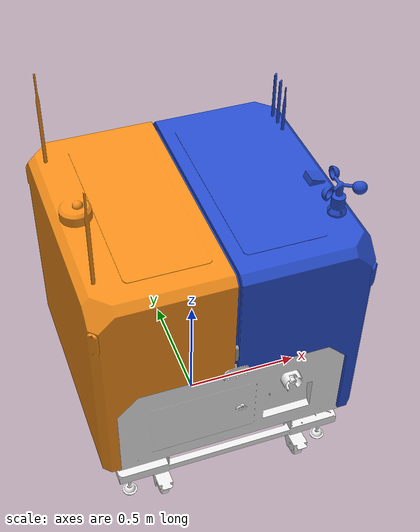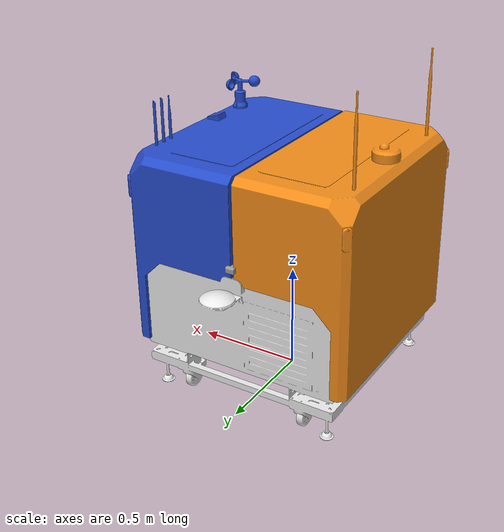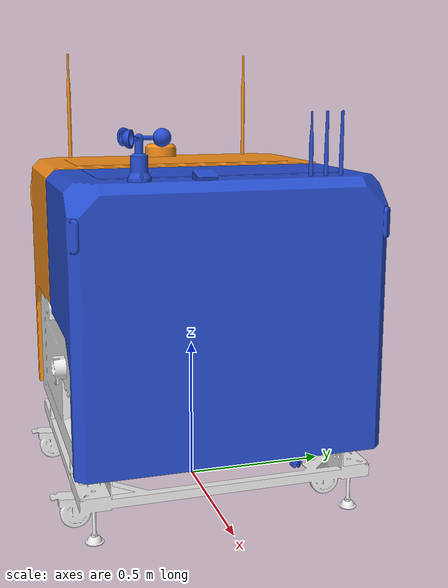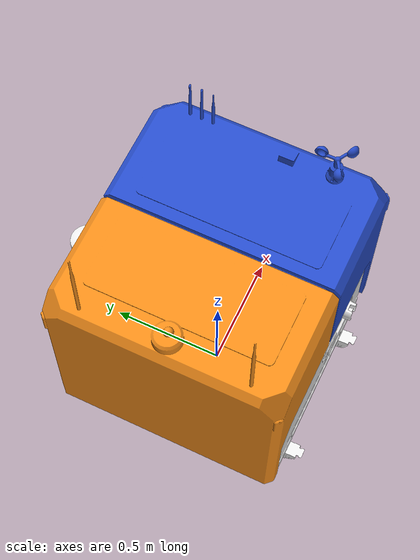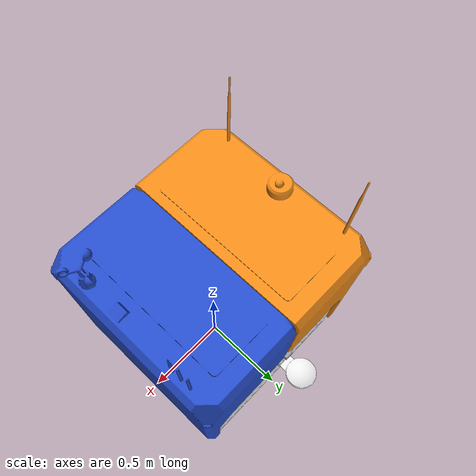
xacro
<?xml version="1.0" ?>
<robot xmlns:xacro="http://ros.org/wiki/xacro" name="box">

  <xacro:arg name="name_space" default="robot1"/>
  <xacro:property name="name_space" value="$(arg name_space)"/>

  <joint name="clamp_h_1_joint" type="prismatic">
    <parent link="base_link"/>
    <child link="clamp_h_1_link"/>
    <axis xyz="0.00000 1.00000 0.00000"/>
    <limit effort="1000.0" lower="0" upper="0.2" velocity="2.0"/>
    <origin rpy="0.00000 0.00000 0.00000" xyz="0.00045 -0.45213 0.75646"/>
  </joint>
  <joint name="clamp_h_2_joint" type="prismatic">
    <mimic joint="clamp_h_1_joint"/>
    <parent link="base_link"/>
    <child link="clamp_h_2_link"/>
    <axis xyz="0.00000 -1.00000 0.00000"/>
    <limit effort="1000.0" lower="0" upper="0.2" velocity="2.0"/>
    <origin rpy="0.00000 0.00000 0.00000" xyz="0.00045 0.47188 0.73446"/>
  </joint>
  <joint name="clamp_v_1_joint" type="prismatic">
    <parent link="base_link"/>
    <child link="clamp_v_1_link"/>
    <axis xyz="1.00000 0.00000 0.00000"/>
    <limit effort="100.0" lower="0" upper="0.2" velocity="2.0"/>
    <origin rpy="0.00000 0.00000 0.00000" xyz="-0.48072 -0.00040 0.72921"/>
  </joint>
  <joint name="clamp_v_2_joint" type="prismatic">
    <mimic joint="clamp_v_1_joint"/>
    <parent link="base_link"/>
    <child link="clamp_v_2_link"/>
    <axis xyz="-1.00000 0.00000 0.00000"/>
    <limit effort="100.0" lower="0" upper="0.2" velocity="2.0"/>
    <origin rpy="0.00000 0.00000 0.00000" xyz="0.48162 -0.00040 0.72921"/>
  </joint>
  <!-- GPS antenna puck on the back edge of the body (part of base.stl) -->
  <joint name="gps_joint" type="fixed">
    <parent link="base_link"/>
    <child link="gps_link"/>
    <origin rpy="0.00000 0.00000 0.00000" xyz="0.00000 0.60900 0.67100"/>
  </joint>
  <!-- Hinges on the brackets at the bottom of the body side walls. ASSUMED:
       the CAD export has no assembly placement, see make_box_meshes.py. -->
  <joint name="lid_left_joint" type="revolute">
    <parent link="base_link"/>
    <child link="lid_left_link"/>
    <axis xyz="0.00000 -1.00000 0.00000"/>
    <limit effort="100000.0" lower="0" upper="1.57" velocity="1.00000"/>
    <origin rpy="0.00000 0.00000 0.00000" xyz="-0.53000 0.00000 0.25300"/>
  </joint>
  <joint name="lid_right_joint" type="revolute">
    <mimic joint="lid_left_joint"/>
    <parent link="base_link"/>
    <child link="lid_right_link"/>
    <axis xyz="0.00000 1.00000 0.00000"/>
    <limit effort="100000.00" lower="0" upper="1.57" velocity="1.00000"/>
    <origin rpy="0.00000 0.00000 0.00000" xyz="0.53000 0.00000 0.25300"/>
  </joint>
  <link name="base_link">
    <!-- legs + bottom frame -->
    <collision name="base_collision">
      <origin xyz="0.00000 -0.03450 0.11500" rpy="0 0 0"/>
      <geometry>
        <box size="0.94700 1.03900 0.23000"/>
      </geometry>
    </collision>
    <!-- body -->
    <collision name="base_collision.000">
      <origin xyz="0.00000 -0.00700 0.44750" rpy="0 0 0"/>
      <geometry>
        <box size="1.00000 0.98600 0.43500"/>
      </geometry>
    </collision>
    <!-- top plate = landing surface, top face at z = 0.721 -->
    <collision name="base_collision.001">
      <origin xyz="0.00000 0.00000 0.69300" rpy="0 0 0"/>
      <geometry>
        <box size="0.95000 0.97000 0.05600"/>
      </geometry>
      <surface>
        <contact/>
      </surface>
    </collision>
    <inertial>
      <inertia ixx="5" ixy="0" ixz="0" iyy="5" iyz="0" izz="5"/>
      <origin rpy="0 0 0" xyz="0 0 0.35"/>
      <mass value="20.00000"/>
    </inertial>
    <visual>
      <origin rpy="0 0 0" xyz="0 0 0"/>
      <geometry>
        <mesh filename="package://box_simulation/meshes/stl/base.stl"/>
      </geometry>
    </visual>
  </link>
  <link name="clamp_h_1_link">
    <collision name="clamp_h_1_collision">
      <origin rpy="0 0 0" xyz="0 0 0"/>
      <geometry>
        <box size="0.28200 0.09200 0.07050"/>
      </geometry>
    </collision>
    <inertial>
      <inertia ixx="0.001" ixy="0" ixz="0" iyy="0.001" iyz="0" izz="0.001"/>
      <origin rpy="0 0 0" xyz="0 0 0"/>
      <mass value="0.50000"/>
    </inertial>
    <visual>
      <origin rpy="0 0 0" xyz="0 0 0"/>
      <geometry>
        <mesh filename="package://box_simulation/meshes/stl/clamp_h_1.stl"/>
      </geometry>
    </visual>
  </link>
  <link name="clamp_h_2_link">
    <collision name="clamp_h_2_collision">
      <origin rpy="0 0 0" xyz="0 0 0"/>
      <geometry>
        <box size="0.28200 0.09519 0.02650"/>
      </geometry>
    </collision>
    <inertial>
      <inertia ixx="0.001" ixy="0" ixz="0" iyy="0.001" iyz="0" izz="0.001"/>
      <origin rpy="0 0 0" xyz="0 0 0"/>
      <mass value="0.50000"/>
    </inertial>
    <visual>
      <origin rpy="0 0 0" xyz="0 0 0"/>
      <geometry>
        <mesh filename="package://box_simulation/meshes/stl/clamp_h_2.stl"/>
      </geometry>
    </visual>
  </link>
  <link name="clamp_v_1_link">
    <collision name="clamp_v_1_collision">
      <origin rpy="0 0 0" xyz="0 0 0"/>
      <geometry>
        <box size="0.08800 0.70000 0.01600"/>
      </geometry>
    </collision>
    <inertial>
      <inertia ixx="0.001" ixy="0" ixz="0" iyy="0.001" iyz="0" izz="0.001"/>
      <origin rpy="0 0 0" xyz="0 0 0"/>
      <mass value="0.50000"/>
    </inertial>
    <visual>
      <origin rpy="0 0 0" xyz="0 0 0"/>
      <geometry>
        <mesh filename="package://box_simulation/meshes/stl/clamp_v_1.stl"/>
      </geometry>
    </visual>
  </link>
  <link name="clamp_v_2_link">
    <collision name="clamp_v_2_collision">
      <origin rpy="0 0 0" xyz="0 0 0"/>
      <geometry>
        <box size="0.08800 0.70000 0.01600"/>
      </geometry>
    </collision>
    <inertial>
      <inertia ixx="0.001" ixy="0" ixz="0" iyy="0.001" iyz="0" izz="0.001"/>
      <origin rpy="0 0 0" xyz="0 0 0"/>
      <mass value="0.50000"/>
    </inertial>
    <visual>
      <origin rpy="0 0 0" xyz="0 0 0"/>
      <geometry>
        <mesh filename="package://box_simulation/meshes/stl/clamp_v_2.stl"/>
      </geometry>
    </visual>
  </link>
  <link name="gps_link">
    <inertial>
      <inertia ixx="0.0001" ixy="0" ixz="0" iyy="0.0001" iyz="0" izz="0.0001"/>
      <origin rpy="0 0 0" xyz="0 0 0"/>
      <mass value="0.0100"/>
    </inertial>
  </link>
  <link name="lid_left_link">
    <inertial>
      <inertia ixx="0.001" ixy="0" ixz="0" iyy="0.001" iyz="0" izz="0.001"/>
      <origin rpy="0 0 0" xyz="0 0 0"/>
      <mass value="1.00000"/>
    </inertial>
    <visual>
      <origin rpy="0 0 0" xyz="0 0 0"/>
      <geometry>
        <mesh filename="package://box_simulation/meshes/stl/lid_left.stl"/>
      </geometry>
      <material name="Gazebo/Orange"/>
    </visual>
  </link>
  <link name="lid_right_link">
    <inertial>
      <inertia ixx="0.001" ixy="0" ixz="0" iyy="0.001" iyz="0" izz="0.001"/>
      <origin rpy="0 0 0" xyz="0 0 0"/>
      <mass value="1.00000"/>
    </inertial>
    <visual>
      <origin rpy="0 0 0" xyz="0 0 0"/>
      <geometry>
        <mesh filename="package://box_simulation/meshes/stl/lid_right.stl"/>
      </geometry>
      <material name="Gazebo/Blue"/>
    </visual>
  </link>
  <gazebo reference="lid_left_link">
    <material>Gazebo/Orange</material>
  </gazebo>
  <gazebo reference="lid_right_link">
    <material>Gazebo/Blue</material>
  </gazebo>
  <gazebo reference="base_link">
    <material>Gazebo/White</material>

  </gazebo>
  <gazebo reference="clamp_v_1_link">
    <material>Gazebo/Grey</material>
  </gazebo>
  <gazebo reference="clamp_v_2_link">
    <material>Gazebo/Grey</material>
  </gazebo>
  <gazebo reference="clamp_h_1_link">
    <material>Gazebo/Grey</material>
  </gazebo>
  <gazebo reference="clamp_h_2_link">
    <material>Gazebo/Grey</material>
  </gazebo>
  <gazebo reference="gps_link">
    <material>Gazebo/Black</material>
  </gazebo>
  <ros2_control name="GazeboSimSystem" type="system">
    <hardware>
      <!-- Gazebo Harmonic (gz-sim8) uses gz_ros2_control; the ign_ros2_control
           name is for the older Ignition Fortress and fails to load here
           (missing GzPluginHook). -->
      <plugin>gz_ros2_control/GazeboSimSystem</plugin>
    </hardware>
    <joint name="clamp_h_1_joint">
      <command_interface name="position"/>
      <state_interface name="position"/>
      <state_interface name="velocity"/>
      <state_interface name="effort"/>
    </joint>
    <joint name="clamp_h_2_joint">
      <param name="mimic">clamp_h_1_joint</param>
      <param name="multiplier">1</param>
      <command_interface name="position"/>
      <state_interface name="position"/>
      <state_interface name="velocity"/>
      <state_interface name="effort"/>
    </joint>
    <joint name="clamp_v_1_joint">
      <command_interface name="position"/>
      <state_interface name="position"/>
      <state_interface name="velocity"/>
      <state_interface name="effort"/>
    </joint>
    <joint name="clamp_v_2_joint">
      <param name="mimic">clamp_v_1_joint</param>
      <param name="multiplier">1</param>
      <command_interface name="position"/>
      <state_interface name="position"/>
      <state_interface name="velocity"/>
      <state_interface name="effort"/>
    </joint>
    <joint name="lid_left_joint">
      <command_interface name="position"/>
      <state_interface name="position"/>
      <state_interface name="velocity"/>
      <state_interface name="effort"/>
    </joint>
    <joint name="lid_right_joint">
      <param name="mimic">lid_left_joint</param>
      <param name="multiplier">1</param>
      <command_interface name="position"/>
      <state_interface name="position"/>
      <state_interface name="velocity"/>
      <state_interface name="effort"/>
    </joint>
  </ros2_control>

  <gazebo>
    <!-- Gazebo Harmonic (gz-sim8) plugin name; was ign_ros2_control-system
         (Ignition Fortress) which does not load under Harmonic. -->
    <plugin filename="gz_ros2_control-system" name="gz_ros2_control::GazeboSimROS2ControlPlugin">
      <parameters>$(find box_simulation)/config/box_controller.yaml</parameters>
    </plugin>
  </gazebo>
  <gazebo reference="gps_link">
    <sensor name="my_gps" type="navsat">
      <always_on>true</always_on>
      <update_rate>10</update_rate>
      <topic>${name_space}/gps/fix</topic>
      <navsat>
        <position_sensing>
          <horizontal>
            <noise type="gaussian">
              <mean>0.0</mean>
              <stddev>2e-4</stddev>
            </noise>
          </horizontal>
          <vertical>
            <noise type="gaussian">
              <mean>0.0</mean>
              <stddev>2e-4</stddev>
            </noise>
          </vertical>
        </position_sensing>
      </navsat>
    </sensor>
  </gazebo>
</robot>
